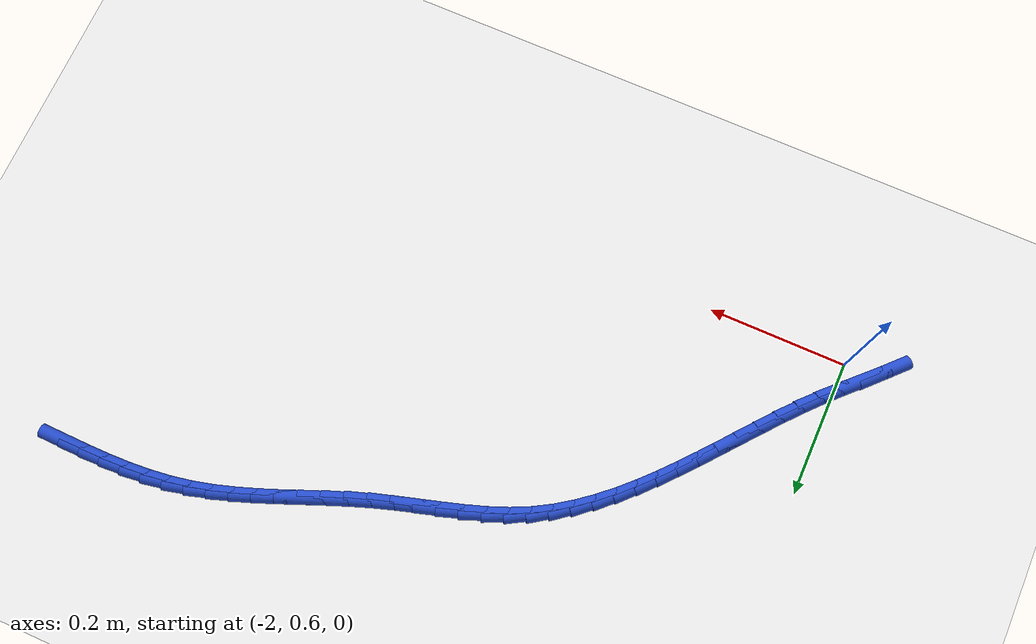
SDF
<sdf version="1.6">
 <world name="default">
  <model name="ground_plane">
   <static>1</static>
   <link name="link">
    <collision name="collision">
     <geometry><plane><normal>0 0 1</normal><size>100 100</size></plane></geometry>
     <surface><friction><ode><mu>100</mu><mu2>50</mu2></ode></friction></surface>
    </collision>
    <visual name="visual">
     <cast_shadows>0</cast_shadows>
     <geometry><plane><normal>0 0 1</normal><size>100 100</size></plane></geometry>
     <material>
      <script><uri>file://media/materials/scripts/gazebo.material</uri><name>Gazebo/WhiteGlow</name></script>
     </material>
    </visual>
   </link>
  </model>
  <model name="line">
   <link name="link_55">
    <pose>-1.059011893011788 1.1385800312270324 0.01 0 1.57 -0.020784394344310016</pose>
    <collision name="collision">
     <geometry><cylinder><radius>0.01</radius><length>0.08</length></cylinder></geometry>
    </collision>
    <visual name="visual">
     <material>
      <script><name>Gazebo/Blue</name><uri>file://media/materials/scripts/gazebo.material</uri></script>
     </material>
     <geometry><cylinder><radius>0.01</radius><length>0.08</length></cylinder></geometry>
    </visual>
   </link>
   <link name="link_56">
    <pose>-1.0905115958835596 1.139234827764711 0.01 0 1.57 0.0026024233260266033</pose>
    <collision name="collision">
     <geometry><cylinder><radius>0.01</radius><length>0.08</length></cylinder></geometry>
    </collision>
    <visual name="visual">
     <material>
      <script><name>Gazebo/Blue</name><uri>file://media/materials/scripts/gazebo.material</uri></script>
     </material>
     <geometry><cylinder><radius>0.01</radius><length>0.08</length></cylinder></geometry>
    </visual>
   </link>
   <link name="link_57">
    <pose>-1.1218215886473055 1.1391533457252563 0.01 0 1.57 0.03487295807938544</pose>
    <collision name="collision">
     <geometry><cylinder><radius>0.01</radius><length>0.08</length></cylinder></geometry>
    </collision>
    <visual name="visual">
     <material>
      <script><name>Gazebo/Blue</name><uri>file://media/materials/scripts/gazebo.material</uri></script>
     </material>
     <geometry><cylinder><radius>0.01</radius><length>0.08</length></cylinder></geometry>
    </visual>
   </link>
   <link name="link_58">
    <pose>-1.1528873330106877 1.1380695519464887 0.01 0 1.57 0.07630173418979681</pose>
    <collision name="collision">
     <geometry><cylinder><radius>0.01</radius><length>0.08</length></cylinder></geometry>
    </collision>
    <visual name="visual">
     <material>
      <script><name>Gazebo/Blue</name><uri>file://media/materials/scripts/gazebo.material</uri></script>
     </material>
     <geometry><cylinder><radius>0.01</radius><length>0.08</length></cylinder></geometry>
    </visual>
   </link>
   <link name="link_59">
    <pose>-1.1836542906813696 1.1357174132662293 0.01 0 1.57 0.12709978297195684</pose>
    <collision name="collision">
     <geometry><cylinder><radius>0.01</radius><length>0.08</length></cylinder></geometry>
    </collision>
    <visual name="visual">
     <material>
      <script><name>Gazebo/Blue</name><uri>file://media/materials/scripts/gazebo.material</uri></script>
     </material>
     <geometry><cylinder><radius>0.01</radius><length>0.08</length></cylinder></geometry>
    </visual>
   </link>
   <link name="link_60">
    <pose>-1.2140679233670135 1.1318308965222994 0.01 0 1.57 0.18727788384975455</pose>
    <collision name="collision">
     <geometry><cylinder><radius>0.01</radius><length>0.08</length></cylinder></geometry>
    </collision>
    <visual name="visual">
     <material>
      <script><name>Gazebo/Blue</name><uri>file://media/materials/scripts/gazebo.material</uri></script>
     </material>
     <geometry><cylinder><radius>0.01</radius><length>0.08</length></cylinder></geometry>
    </visual>
   </link>
   <link name="link_61">
    <pose>-1.2440739061980506 1.1261448075220017 0.01 0 1.57 0.25048885633698287</pose>
    <collision name="collision">
     <geometry><cylinder><radius>0.01</radius><length>0.08</length></cylinder></geometry>
    </collision>
    <visual name="visual">
     <material>
      <script><name>Gazebo/Blue</name><uri>file://media/materials/scripts/gazebo.material</uri></script>
     </material>
     <geometry><cylinder><radius>0.01</radius><length>0.08</length></cylinder></geometry>
    </visual>
   </link>
   <link name="link_62">
    <pose>-1.2736636870780544 1.118573885826262 0.01 0 1.57 0.3026504630328607</pose>
    <collision name="collision">
     <geometry><cylinder><radius>0.01</radius><length>0.08</length></cylinder></geometry>
    </collision>
    <visual name="visual">
     <material>
      <script><name>Gazebo/Blue</name><uri>file://media/materials/scripts/gazebo.material</uri></script>
     </material>
     <geometry><cylinder><radius>0.01</radius><length>0.08</length></cylinder></geometry>
    </visual>
   </link>
   <link name="link_63">
    <pose>-1.3029310991111553 1.109435349416834 0.01 0 1.57 0.34175123564545307</pose>
    <collision name="collision">
     <geometry><cylinder><radius>0.01</radius><length>0.08</length></cylinder></geometry>
    </collision>
    <visual name="visual">
     <material>
      <script><name>Gazebo/Blue</name><uri>file://media/materials/scripts/gazebo.material</uri></script>
     </material>
     <geometry><cylinder><radius>0.01</radius><length>0.08</length></cylinder></geometry>
    </visual>
   </link>
   <link name="link_64">
    <pose>-1.3319838691904278 1.099101033058015 0.01 0 1.57 0.36793322855585825</pose>
    <collision name="collision">
     <geometry><cylinder><radius>0.01</radius><length>0.08</length></cylinder></geometry>
    </collision>
    <visual name="visual">
     <material>
      <script><name>Gazebo/Blue</name><uri>file://media/materials/scripts/gazebo.material</uri></script>
     </material>
     <geometry><cylinder><radius>0.01</radius><length>0.08</length></cylinder></geometry>
    </visual>
   </link>
   <link name="link_65">
    <pose>-1.360929724208948 1.087942771514102 0.01 0 1.57 0.3814502427005455</pose>
    <collision name="collision">
     <geometry><cylinder><radius>0.01</radius><length>0.08</length></cylinder></geometry>
    </collision>
    <visual name="visual">
     <material>
      <script><name>Gazebo/Blue</name><uri>file://media/materials/scripts/gazebo.material</uri></script>
     </material>
     <geometry><cylinder><radius>0.01</radius><length>0.08</length></cylinder></geometry>
    </visual>
   </link>
   <link name="link_66">
    <pose>-1.3898763910597918 1.0763323995493908 0.01 0 1.57 0.38253905778734415</pose>
    <collision name="collision">
     <geometry><cylinder><radius>0.01</radius><length>0.08</length></cylinder></geometry>
    </collision>
    <visual name="visual">
     <material>
      <script><name>Gazebo/Blue</name><uri>file://media/materials/scripts/gazebo.material</uri></script>
     </material>
     <geometry><cylinder><radius>0.01</radius><length>0.08</length></cylinder></geometry>
    </visual>
   </link>
   <link name="link_67">
    <pose>-1.4189315966360343 1.0646417519281797 0.01 0 1.57 0.3713582480179132</pose>
    <collision name="collision">
     <geometry><cylinder><radius>0.01</radius><length>0.08</length></cylinder></geometry>
    </collision>
    <visual name="visual">
     <material>
      <script><name>Gazebo/Blue</name><uri>file://media/materials/scripts/gazebo.material</uri></script>
     </material>
     <geometry><cylinder><radius>0.01</radius><length>0.08</length></cylinder></geometry>
    </visual>
   </link>
   <link name="link_68">
    <pose>-1.448203067830752 1.053242663414765 0.01 0 1.57 0.34798614795337746</pose>
    <collision name="collision">
     <geometry><cylinder><radius>0.01</radius><length>0.08</length></cylinder></geometry>
    </collision>
    <visual name="visual">
     <material>
      <script><name>Gazebo/Blue</name><uri>file://media/materials/scripts/gazebo.material</uri></script>
     </material>
     <geometry><cylinder><radius>0.01</radius><length>0.08</length></cylinder></geometry>
    </visual>
   </link>
   <link name="link_69">
    <pose>-1.4777985315370201 1.0425069687734438 0.01 0 1.57 0.31504509297339006</pose>
    <collision name="collision">
     <geometry><cylinder><radius>0.01</radius><length>0.08</length></cylinder></geometry>
    </collision>
    <visual name="visual">
     <material>
      <script><name>Gazebo/Blue</name><uri>file://media/materials/scripts/gazebo.material</uri></script>
     </material>
     <geometry><cylinder><radius>0.01</radius><length>0.08</length></cylinder></geometry>
    </visual>
   </link>
   <link name="link_70">
    <pose>-1.5077925427802419 1.0327319407440556 0.01 0 1.57 0.29158548764364767</pose>
    <collision name="collision">
     <geometry><cylinder><radius>0.01</radius><length>0.08</length></cylinder></geometry>
    </collision>
    <visual name="visual">
     <material>
      <script><name>Gazebo/Blue</name><uri>file://media/materials/scripts/gazebo.material</uri></script>
     </material>
     <geometry><cylinder><radius>0.01</radius><length>0.08</length></cylinder></geometry>
    </visual>
   </link>
   <link name="link_71">
    <pose>-1.5380134451496255 1.0236614306158194 0.01 0 1.57 0.2860192500326317</pose>
    <collision name="collision">
     <geometry><cylinder><radius>0.01</radius><length>0.08</length></cylinder></geometry>
    </collision>
    <visual name="visual">
     <material>
      <script><name>Gazebo/Blue</name><uri>file://media/materials/scripts/gazebo.material</uri></script>
     </material>
     <geometry><cylinder><radius>0.01</radius><length>0.08</length></cylinder></geometry>
    </visual>
   </link>
   <link name="link_72">
    <pose>-1.5681788170912774 1.0147903174647928 0.01 0 1.57 0.2985150818508363</pose>
    <collision name="collision">
     <geometry><cylinder><radius>0.01</radius><length>0.08</length></cylinder></geometry>
    </collision>
    <visual name="visual">
     <material>
      <script><name>Gazebo/Blue</name><uri>file://media/materials/scripts/gazebo.material</uri></script>
     </material>
     <geometry><cylinder><radius>0.01</radius><length>0.08</length></cylinder></geometry>
    </visual>
   </link>
   <link name="link_73">
    <pose>-1.598005705674188 1.0056122859647871 0.01 0 1.57 0.3296221462535409</pose>
    <collision name="collision">
     <geometry><cylinder><radius>0.01</radius><length>0.08</length></cylinder></geometry>
    </collision>
    <visual name="visual">
     <material>
      <script><name>Gazebo/Blue</name><uri>file://media/materials/scripts/gazebo.material</uri></script>
     </material>
     <geometry><cylinder><radius>0.01</radius><length>0.08</length></cylinder></geometry>
    </visual>
   </link>
   <link name="link_74">
    <pose>-1.627211157967352 0.9956210207896149 0.01 0 1.57 0.38021358386515425</pose>
    <collision name="collision">
     <geometry><cylinder><radius>0.01</radius><length>0.08</length></cylinder></geometry>
    </collision>
    <visual name="visual">
     <material>
      <script><name>Gazebo/Blue</name><uri>file://media/materials/scripts/gazebo.material</uri></script>
     </material>
     <geometry><cylinder><radius>0.01</radius><length>0.08</length></cylinder></geometry>
    </visual>
   </link>
   <link name="link_75">
    <pose>-1.6555122210397601 0.9843102066130873 0.01 0 1.57 0.451069140959367</pose>
    <collision name="collision">
     <geometry><cylinder><radius>0.01</radius><length>0.08</length></cylinder></geometry>
    </collision>
    <visual name="visual">
     <material>
      <script><name>Gazebo/Blue</name><uri>file://media/materials/scripts/gazebo.material</uri></script>
     </material>
     <geometry><cylinder><radius>0.01</radius><length>0.08</length></cylinder></geometry>
    </visual>
   </link>
   <link name="link_76">
    <pose>-1.6826275519774485 0.9711762354318262 0.01 0 1.57 0.533100362238966</pose>
    <collision name="collision">
     <geometry><cylinder><radius>0.01</radius><length>0.08</length></cylinder></geometry>
    </collision>
    <visual name="visual">
     <material>
      <script><name>Gazebo/Blue</name><uri>file://media/materials/scripts/gazebo.material</uri></script>
     </material>
     <geometry><cylinder><radius>0.01</radius><length>0.08</length></cylinder></geometry>
    </visual>
   </link>
   <link name="link_77">
    <pose>-1.7084193053329146 0.9559567972869695 0.01 0 1.57 0.6088000227474032</pose>
    <collision name="collision">
     <geometry><cylinder><radius>0.01</radius><length>0.08</length></cylinder></geometry>
    </collision>
    <visual name="visual">
     <material>
      <script><name>Gazebo/Blue</name><uri>file://media/materials/scripts/gazebo.material</uri></script>
     </material>
     <geometry><cylinder><radius>0.01</radius><length>0.08</length></cylinder></geometry>
    </visual>
   </link>
   <link name="link_78">
    <pose>-1.7330042763302742 0.9388177730277011 0.01 0 1.57 0.6755655785510147</pose>
    <collision name="collision">
     <geometry><cylinder><radius>0.01</radius><length>0.08</length></cylinder></geometry>
    </collision>
    <visual name="visual">
     <material>
      <script><name>Gazebo/Blue</name><uri>file://media/materials/scripts/gazebo.material</uri></script>
     </material>
     <geometry><cylinder><radius>0.01</radius><length>0.08</length></cylinder></geometry>
    </visual>
   </link>
   <link name="link_79">
    <pose>-1.7565254177860383 0.9199690287807802 0.01 0 1.57 0.7330194291430522</pose>
    <collision name="collision">
     <geometry><cylinder><radius>0.01</radius><length>0.08</length></cylinder></geometry>
    </collision>
    <visual name="visual">
     <material>
      <script><name>Gazebo/Blue</name><uri>file://media/materials/scripts/gazebo.material</uri></script>
     </material>
     <geometry><cylinder><radius>0.01</radius><length>0.08</length></cylinder></geometry>
    </visual>
   </link>
   <link name="link_80">
    <pose>-1.7791256825167177 0.8996204306729682 0.01 0 1.57 0.7811701383800754</pose>
    <collision name="collision">
     <geometry><cylinder><radius>0.01</radius><length>0.08</length></cylinder></geometry>
    </collision>
    <visual name="visual">
     <material>
      <script><name>Gazebo/Blue</name><uri>file://media/materials/scripts/gazebo.material</uri></script>
     </material>
     <geometry><cylinder><radius>0.01</radius><length>0.08</length></cylinder></geometry>
    </visual>
   </link>
   <link name="link_81">
    <pose>-1.8009480233388229 0.8779818448310247 0.01 0 1.57 0.82026161148353</pose>
    <collision name="collision">
     <geometry><cylinder><radius>0.01</radius><length>0.08</length></cylinder></geometry>
    </collision>
    <visual name="visual">
     <material>
      <script><name>Gazebo/Blue</name><uri>file://media/materials/scripts/gazebo.material</uri></script>
     </material>
     <geometry><cylinder><radius>0.01</radius><length>0.08</length></cylinder></geometry>
    </visual>
   </link>
   <link name="link_82">
    <pose>-1.8221353930688644 0.85526313738171 0.01 0 1.57 0.8506470874871135</pose>
    <collision name="collision">
     <geometry><cylinder><radius>0.01</radius><length>0.08</length></cylinder></geometry>
    </collision>
    <visual name="visual">
     <material>
      <script><name>Gazebo/Blue</name><uri>file://media/materials/scripts/gazebo.material</uri></script>
     </material>
     <geometry><cylinder><radius>0.01</radius><length>0.08</length></cylinder></geometry>
    </visual>
   </link>
   <link name="link_83">
    <pose>-1.8428307445233527 0.8316741744517838 0.01 0 1.57 0.8726969711150186</pose>
    <collision name="collision">
     <geometry><cylinder><radius>0.01</radius><length>0.08</length></cylinder></geometry>
    </collision>
    <visual name="visual">
     <material>
      <script><name>Gazebo/Blue</name><uri>file://media/materials/scripts/gazebo.material</uri></script>
     </material>
     <geometry><cylinder><radius>0.01</radius><length>0.08</length></cylinder></geometry>
    </visual>
   </link>
   <link name="link_84">
    <pose>-1.8631770305187996 0.8074248221680073 0.01 0 1.57 0.8867379826410885</pose>
    <collision name="collision">
     <geometry><cylinder><radius>0.01</radius><length>0.08</length></cylinder></geometry>
    </collision>
    <visual name="visual">
     <material>
      <script><name>Gazebo/Blue</name><uri>file://media/materials/scripts/gazebo.material</uri></script>
     </material>
     <geometry><cylinder><radius>0.01</radius><length>0.08</length></cylinder></geometry>
    </visual>
   </link>
   <link name="link_85">
    <pose>-1.8833172038717145 0.7827249466571395 0.01 0 1.57 0.8930168347767435</pose>
    <collision name="collision">
     <geometry><cylinder><radius>0.01</radius><length>0.08</length></cylinder></geometry>
    </collision>
    <visual name="visual">
     <material>
      <script><name>Gazebo/Blue</name><uri>file://media/materials/scripts/gazebo.material</uri></script>
     </material>
     <geometry><cylinder><radius>0.01</radius><length>0.08</length></cylinder></geometry>
    </visual>
   </link>
   <link name="link_86">
    <pose>-1.9033942173986085 0.7577844140459415 0.01 0 1.57 0.8916816464733052</pose>
    <collision name="collision">
     <geometry><cylinder><radius>0.01</radius><length>0.08</length></cylinder></geometry>
    </collision>
    <visual name="visual">
     <material>
      <script><name>Gazebo/Blue</name><uri>file://media/materials/scripts/gazebo.material</uri></script>
     </material>
     <geometry><cylinder><radius>0.01</radius><length>0.08</length></cylinder></geometry>
    </visual>
   </link>
   <link name="link_87">
    <pose>-1.9235510239159919 0.7328130904611729 0.01 0 1.57 0.8827761613719337</pose>
    <collision name="collision">
     <geometry><cylinder><radius>0.01</radius><length>0.08</length></cylinder></geometry>
    </collision>
    <visual name="visual">
     <material>
      <script><name>Gazebo/Blue</name><uri>file://media/materials/scripts/gazebo.material</uri></script>
     </material>
     <geometry><cylinder><radius>0.01</radius><length>0.08</length></cylinder></geometry>
    </visual>
   </link>
   <link name="link_88">
    <pose>-1.9439305762403756 0.7080208420295938 0.01 0 1.57 0.8662442212478744</pose>
    <collision name="collision">
     <geometry><cylinder><radius>0.01</radius><length>0.08</length></cylinder></geometry>
    </collision>
    <visual name="visual">
     <material>
      <script><name>Gazebo/Blue</name><uri>file://media/materials/scripts/gazebo.material</uri></script>
     </material>
     <geometry><cylinder><radius>0.01</radius><length>0.08</length></cylinder></geometry>
    </visual>
   </link>
   <link name="link_89">
    <pose>-1.96467582718827 0.6836175348779648 0.01 0 1.57 0.841944294083444</pose>
    <collision name="collision">
     <geometry><cylinder><radius>0.01</radius><length>0.08</length></cylinder></geometry>
    </collision>
    <visual name="visual">
     <material>
      <script><name>Gazebo/Blue</name><uri>file://media/materials/scripts/gazebo.material</uri></script>
     </material>
     <geometry><cylinder><radius>0.01</radius><length>0.08</length></cylinder></geometry>
    </visual>
   </link>
   <link name="link_90">
    <pose>-1.9859297295761866 0.6598130351330457 0.01 0 1.57 0.810487327405514</pose>
    <collision name="collision">
     <geometry><cylinder><radius>0.01</radius><length>0.08</length></cylinder></geometry>
    </collision>
    <visual name="visual">
     <material>
      <script><name>Gazebo/Blue</name><uri>file://media/materials/scripts/gazebo.material</uri></script>
     </material>
     <geometry><cylinder><radius>0.01</radius><length>0.08</length></cylinder></geometry>
    </visual>
   </link>
   <link name="link_91">
    <pose>-2.0078166730612454 0.6367993356236505 0.01 0 1.57 0.7876126604401993</pose>
    <collision name="collision">
     <geometry><cylinder><radius>0.01</radius><length>0.08</length></cylinder></geometry>
    </collision>
    <visual name="visual">
     <material>
      <script><name>Gazebo/Blue</name><uri>file://media/materials/scripts/gazebo.material</uri></script>
     </material>
     <geometry><cylinder><radius>0.01</radius><length>0.08</length></cylinder></geometry>
    </visual>
   </link>
   <link name="link_92">
    <pose>-2.0300981178569164 0.6144189872574243 0.01 0 1.57 0.7880123809386074</pose>
    <collision name="collision">
     <geometry><cylinder><radius>0.01</radius><length>0.08</length></cylinder></geometry>
    </collision>
    <visual name="visual">
     <material>
      <script><name>Gazebo/Blue</name><uri>file://media/materials/scripts/gazebo.material</uri></script>
     </material>
     <geometry><cylinder><radius>0.01</radius><length>0.08</length></cylinder></geometry>
    </visual>
   </link>
   <link name="link_93">
    <pose>-2.0522049580726587 0.5921962596438739 0.01 0 1.57 0.8127559860994664</pose>
    <collision name="collision">
     <geometry><cylinder><radius>0.01</radius><length>0.08</length></cylinder></geometry>
    </collision>
    <visual name="visual">
     <material>
      <script><name>Gazebo/Blue</name><uri>file://media/materials/scripts/gazebo.material</uri></script>
     </material>
     <geometry><cylinder><radius>0.01</radius><length>0.08</length></cylinder></geometry>
    </visual>
   </link>
  </model>
 </world>
</sdf>
